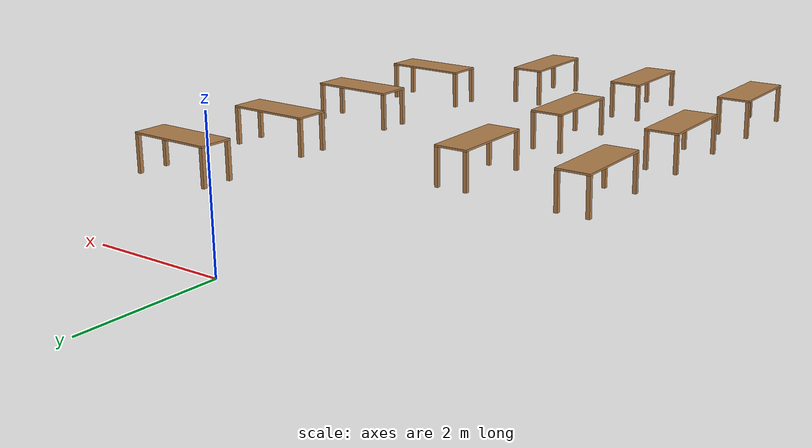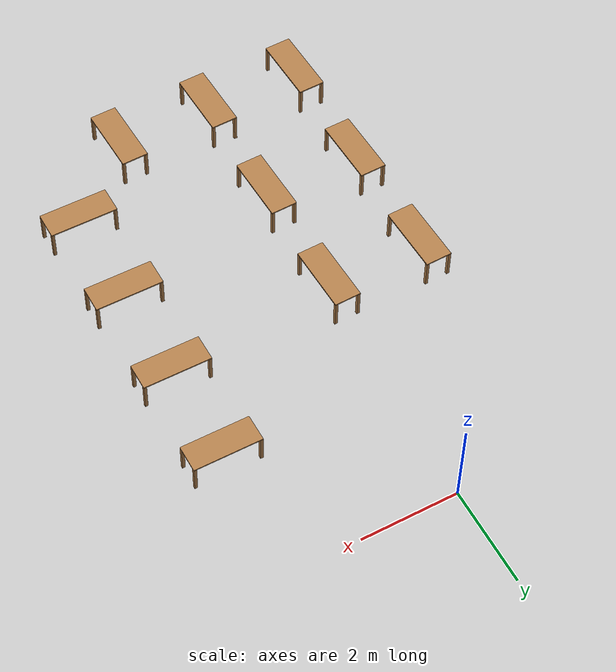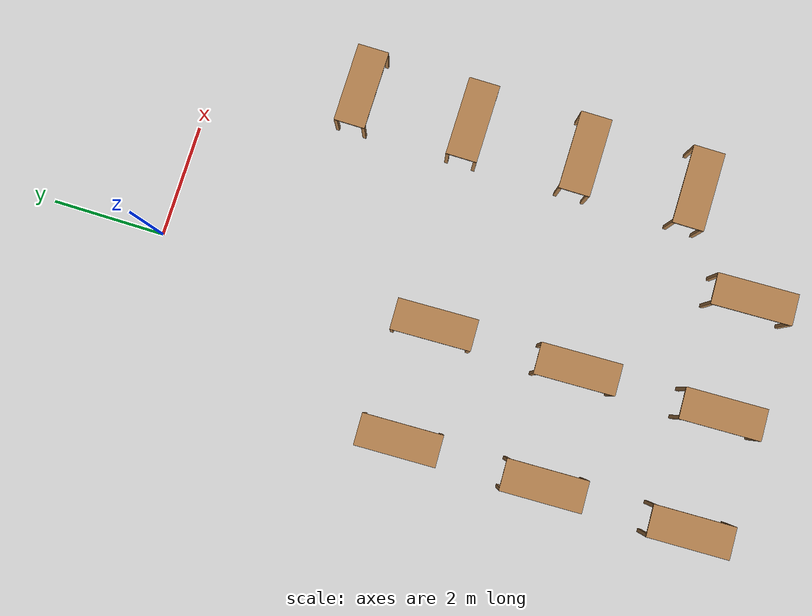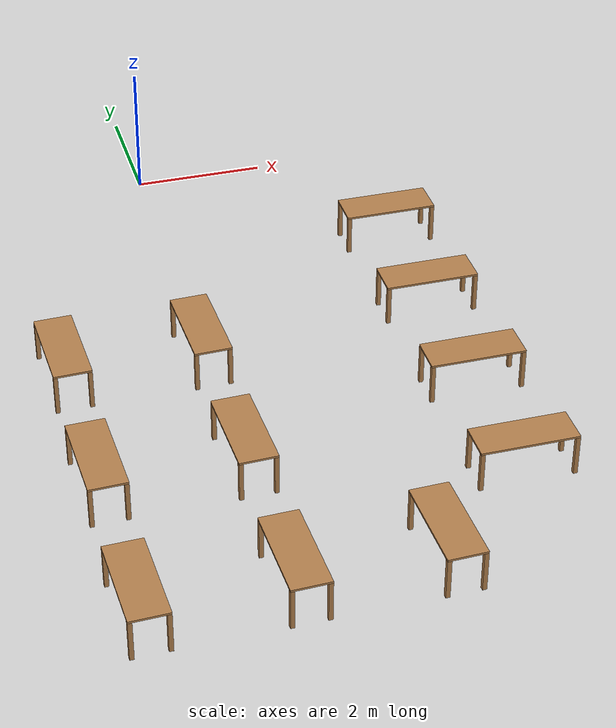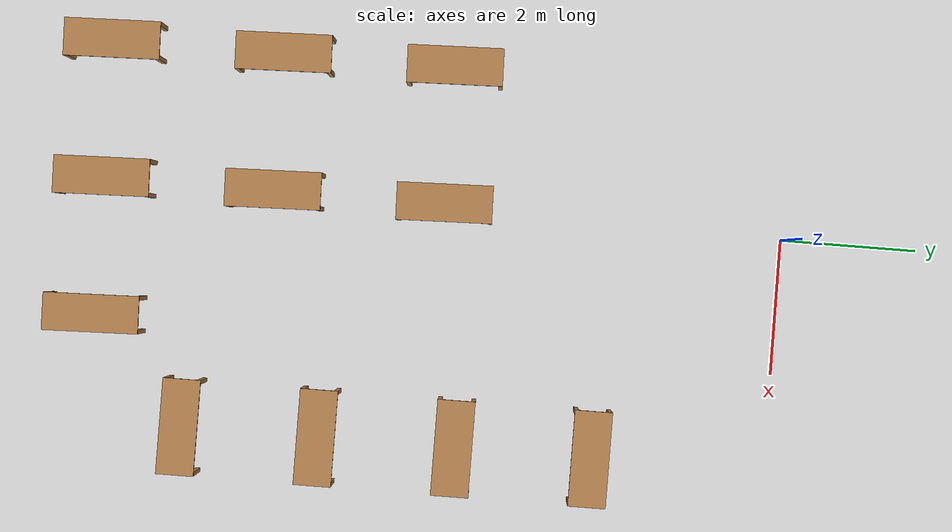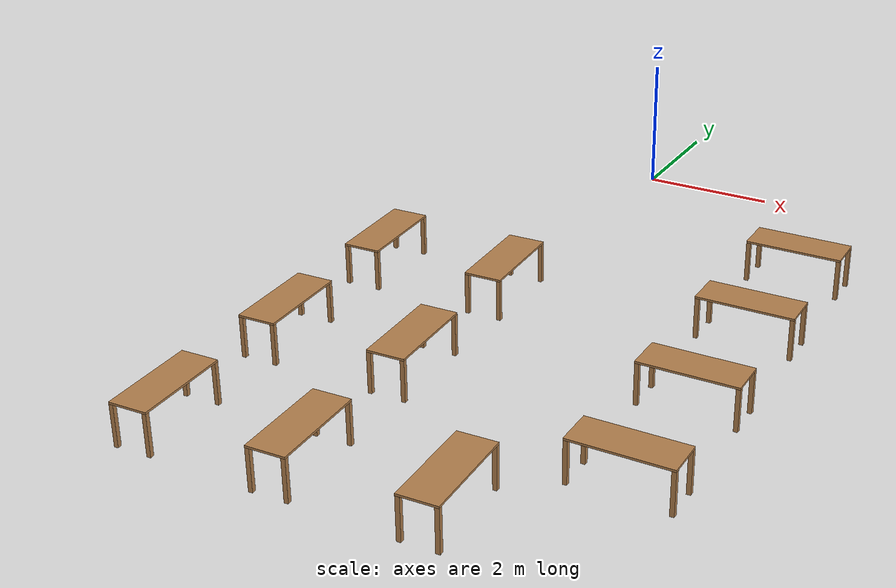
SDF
<sdf version="1.5">
 <world name="default">
  <scene><grid>false</grid><sky><clouds><speed>12</speed></clouds></sky></scene>
  <include><uri>model://sun</uri><name>sun_1</name><pose>0 0 1 0 0 0</pose></include>
  <model name="Table1">
   <static>true</static>
   <link name="mesa_link">
    <visual name="mesa_link_visual">
     <pose>0 0 0.615 0 -0 0</pose>
     <geometry><box><size>1.4 0.55 0.03</size></box></geometry>
     <material><script><name>Gazebo/Wood</name><uri>__default__</uri></script></material>
    </visual>
    <visual name="mesa_link_visual_pata_1_link">
     <pose>0.67 0.245 0.3 0 -0 0</pose>
     <geometry><box><size>0.06 0.06 0.6</size></box></geometry>
     <material><script><name>Gazebo/Wood</name><uri>__default__</uri></script></material>
    </visual>
    <visual name="mesa_link_visual_pata_2_link">
     <pose>0.67 -0.245 0.3 0 -0 0</pose>
     <geometry><box><size>0.06 0.06 0.6</size></box></geometry>
     <material><script><name>Gazebo/Wood</name><uri>__default__</uri></script></material>
    </visual>
    <visual name="mesa_link_visual_pata_3_link">
     <pose>-0.67 -0.245 0.3 0 -0 0</pose>
     <geometry><box><size>0.06 0.06 0.6</size></box></geometry>
     <material><script><name>Gazebo/Wood</name><uri>__default__</uri></script></material>
    </visual>
    <visual name="mesa_link_visual_pata_4_link">
     <pose>-0.67 0.245 0.3 0 -0 0</pose>
     <geometry><box><size>0.06 0.06 0.6</size></box></geometry>
     <material><script><name>Gazebo/Wood</name><uri>__default__</uri></script></material>
    </visual>
   </link>
   <pose>-2.15 -10 0 0 -0 1.60052</pose>
   <static>0</static>
  </model>
  <model name="Table2">
   <static>true</static>
   <link name="mesa_link">
    <visual name="mesa_link_visual">
     <pose>0 0 0.615 0 -0 0</pose>
     <geometry><box><size>1.4 0.55 0.03</size></box></geometry>
     <material><script><name>Gazebo/Wood</name><uri>__default__</uri></script></material>
    </visual>
    <visual name="mesa_link_visual_pata_1_link">
     <pose>0.67 0.245 0.3 0 -0 0</pose>
     <geometry><box><size>0.06 0.06 0.6</size></box></geometry>
     <material><script><name>Gazebo/Wood</name><uri>__default__</uri></script></material>
    </visual>
    <visual name="mesa_link_visual_pata_2_link">
     <pose>0.67 -0.245 0.3 0 -0 0</pose>
     <geometry><box><size>0.06 0.06 0.6</size></box></geometry>
     <material><script><name>Gazebo/Wood</name><uri>__default__</uri></script></material>
    </visual>
    <visual name="mesa_link_visual_pata_3_link">
     <pose>-0.67 -0.245 0.3 0 -0 0</pose>
     <geometry><box><size>0.06 0.06 0.6</size></box></geometry>
     <material><script><name>Gazebo/Wood</name><uri>__default__</uri></script></material>
    </visual>
    <visual name="mesa_link_visual_pata_4_link">
     <pose>-0.67 0.245 0.3 0 -0 0</pose>
     <geometry><box><size>0.06 0.06 0.6</size></box></geometry>
     <material><script><name>Gazebo/Wood</name><uri>__default__</uri></script></material>
    </visual>
   </link>
   <pose>-0.15 -10 0 0 -0 1.60052</pose>
   <static>0</static>
  </model>
  <model name="Table3">
   <static>true</static>
   <link name="mesa_link">
    <visual name="mesa_link_visual">
     <pose>0 0 0.615 0 -0 0</pose>
     <geometry><box><size>1.4 0.55 0.03</size></box></geometry>
     <material><script><name>Gazebo/Wood</name><uri>__default__</uri></script></material>
    </visual>
    <visual name="mesa_link_visual_pata_1_link">
     <pose>0.67 0.245 0.3 0 -0 0</pose>
     <geometry><box><size>0.06 0.06 0.6</size></box></geometry>
     <material><script><name>Gazebo/Wood</name><uri>__default__</uri></script></material>
    </visual>
    <visual name="mesa_link_visual_pata_2_link">
     <pose>0.67 -0.245 0.3 0 -0 0</pose>
     <geometry><box><size>0.06 0.06 0.6</size></box></geometry>
     <material><script><name>Gazebo/Wood</name><uri>__default__</uri></script></material>
    </visual>
    <visual name="mesa_link_visual_pata_3_link">
     <pose>-0.67 -0.245 0.3 0 -0 0</pose>
     <geometry><box><size>0.06 0.06 0.6</size></box></geometry>
     <material><script><name>Gazebo/Wood</name><uri>__default__</uri></script></material>
    </visual>
    <visual name="mesa_link_visual_pata_4_link">
     <pose>-0.67 0.245 0.3 0 -0 0</pose>
     <geometry><box><size>0.06 0.06 0.6</size></box></geometry>
     <material><script><name>Gazebo/Wood</name><uri>__default__</uri></script></material>
    </visual>
   </link>
   <pose>1.85 -10 0 0 -0 1.60052</pose>
   <static>0</static>
  </model>
  <model name="Table4">
   <static>true</static>
   <link name="mesa_link">
    <visual name="mesa_link_visual">
     <pose>0 0 0.615 0 -0 0</pose>
     <geometry><box><size>1.4 0.55 0.03</size></box></geometry>
     <material><script><name>Gazebo/Wood</name><uri>__default__</uri></script></material>
    </visual>
    <visual name="mesa_link_visual_pata_1_link">
     <pose>0.67 0.245 0.3 0 -0 0</pose>
     <geometry><box><size>0.06 0.06 0.6</size></box></geometry>
     <material><script><name>Gazebo/Wood</name><uri>__default__</uri></script></material>
    </visual>
    <visual name="mesa_link_visual_pata_2_link">
     <pose>0.67 -0.245 0.3 0 -0 0</pose>
     <geometry><box><size>0.06 0.06 0.6</size></box></geometry>
     <material><script><name>Gazebo/Wood</name><uri>__default__</uri></script></material>
    </visual>
    <visual name="mesa_link_visual_pata_3_link">
     <pose>-0.67 -0.245 0.3 0 -0 0</pose>
     <geometry><box><size>0.06 0.06 0.6</size></box></geometry>
     <material><script><name>Gazebo/Wood</name><uri>__default__</uri></script></material>
    </visual>
    <visual name="mesa_link_visual_pata_4_link">
     <pose>-0.67 0.245 0.3 0 -0 0</pose>
     <geometry><box><size>0.06 0.06 0.6</size></box></geometry>
     <material><script><name>Gazebo/Wood</name><uri>__default__</uri></script></material>
    </visual>
   </link>
   <pose>3.4 -8.6 0 0 -0 0</pose>
   <static>0</static>
  </model>
  <model name="Table5">
   <static>true</static>
   <link name="mesa_link">
    <visual name="mesa_link_visual">
     <pose>0 0 0.615 0 -0 0</pose>
     <geometry><box><size>1.4 0.55 0.03</size></box></geometry>
     <material><script><name>Gazebo/Wood</name><uri>__default__</uri></script></material>
    </visual>
    <visual name="mesa_link_visual_pata_1_link">
     <pose>0.67 0.245 0.3 0 -0 0</pose>
     <geometry><box><size>0.06 0.06 0.6</size></box></geometry>
     <material><script><name>Gazebo/Wood</name><uri>__default__</uri></script></material>
    </visual>
    <visual name="mesa_link_visual_pata_2_link">
     <pose>0.67 -0.245 0.3 0 -0 0</pose>
     <geometry><box><size>0.06 0.06 0.6</size></box></geometry>
     <material><script><name>Gazebo/Wood</name><uri>__default__</uri></script></material>
    </visual>
    <visual name="mesa_link_visual_pata_3_link">
     <pose>-0.67 -0.245 0.3 0 -0 0</pose>
     <geometry><box><size>0.06 0.06 0.6</size></box></geometry>
     <material><script><name>Gazebo/Wood</name><uri>__default__</uri></script></material>
    </visual>
    <visual name="mesa_link_visual_pata_4_link">
     <pose>-0.67 0.245 0.3 0 -0 0</pose>
     <geometry><box><size>0.06 0.06 0.6</size></box></geometry>
     <material><script><name>Gazebo/Wood</name><uri>__default__</uri></script></material>
    </visual>
   </link>
   <pose>3.4 -6.6 0 0 -0 0</pose>
   <static>0</static>
  </model>
  <model name="Table6">
   <static>true</static>
   <link name="mesa_link">
    <visual name="mesa_link_visual">
     <pose>0 0 0.615 0 -0 0</pose>
     <geometry><box><size>1.4 0.55 0.03</size></box></geometry>
     <material><script><name>Gazebo/Wood</name><uri>__default__</uri></script></material>
    </visual>
    <visual name="mesa_link_visual_pata_1_link">
     <pose>0.67 0.245 0.3 0 -0 0</pose>
     <geometry><box><size>0.06 0.06 0.6</size></box></geometry>
     <material><script><name>Gazebo/Wood</name><uri>__default__</uri></script></material>
    </visual>
    <visual name="mesa_link_visual_pata_2_link">
     <pose>0.67 -0.245 0.3 0 -0 0</pose>
     <geometry><box><size>0.06 0.06 0.6</size></box></geometry>
     <material><script><name>Gazebo/Wood</name><uri>__default__</uri></script></material>
    </visual>
    <visual name="mesa_link_visual_pata_3_link">
     <pose>-0.67 -0.245 0.3 0 -0 0</pose>
     <geometry><box><size>0.06 0.06 0.6</size></box></geometry>
     <material><script><name>Gazebo/Wood</name><uri>__default__</uri></script></material>
    </visual>
    <visual name="mesa_link_visual_pata_4_link">
     <pose>-0.67 0.245 0.3 0 -0 0</pose>
     <geometry><box><size>0.06 0.06 0.6</size></box></geometry>
     <material><script><name>Gazebo/Wood</name><uri>__default__</uri></script></material>
    </visual>
   </link>
   <pose>-2.15 -7.5 0 0 -0 1.60052</pose>
   <static>0</static>
  </model>
  <model name="Table7">
   <static>true</static>
   <link name="mesa_link">
    <visual name="mesa_link_visual">
     <pose>0 0 0.615 0 -0 0</pose>
     <geometry><box><size>1.4 0.55 0.03</size></box></geometry>
     <material><script><name>Gazebo/Wood</name><uri>__default__</uri></script></material>
    </visual>
    <visual name="mesa_link_visual_pata_1_link">
     <pose>0.67 0.245 0.3 0 -0 0</pose>
     <geometry><box><size>0.06 0.06 0.6</size></box></geometry>
     <material><script><name>Gazebo/Wood</name><uri>__default__</uri></script></material>
    </visual>
    <visual name="mesa_link_visual_pata_2_link">
     <pose>0.67 -0.245 0.3 0 -0 0</pose>
     <geometry><box><size>0.06 0.06 0.6</size></box></geometry>
     <material><script><name>Gazebo/Wood</name><uri>__default__</uri></script></material>
    </visual>
    <visual name="mesa_link_visual_pata_3_link">
     <pose>-0.67 -0.245 0.3 0 -0 0</pose>
     <geometry><box><size>0.06 0.06 0.6</size></box></geometry>
     <material><script><name>Gazebo/Wood</name><uri>__default__</uri></script></material>
    </visual>
    <visual name="mesa_link_visual_pata_4_link">
     <pose>-0.67 0.245 0.3 0 -0 0</pose>
     <geometry><box><size>0.06 0.06 0.6</size></box></geometry>
     <material><script><name>Gazebo/Wood</name><uri>__default__</uri></script></material>
    </visual>
   </link>
   <pose>-0.15 -7.5 0 0 -0 1.60052</pose>
   <static>0</static>
  </model>
  <model name="Table8">
   <static>true</static>
   <link name="mesa_link">
    <visual name="mesa_link_visual">
     <pose>0 0 0.615 0 -0 0</pose>
     <geometry><box><size>1.4 0.55 0.03</size></box></geometry>
     <material><script><name>Gazebo/Wood</name><uri>__default__</uri></script></material>
    </visual>
    <visual name="mesa_link_visual_pata_1_link">
     <pose>0.67 0.245 0.3 0 -0 0</pose>
     <geometry><box><size>0.06 0.06 0.6</size></box></geometry>
     <material><script><name>Gazebo/Wood</name><uri>__default__</uri></script></material>
    </visual>
    <visual name="mesa_link_visual_pata_2_link">
     <pose>0.67 -0.245 0.3 0 -0 0</pose>
     <geometry><box><size>0.06 0.06 0.6</size></box></geometry>
     <material><script><name>Gazebo/Wood</name><uri>__default__</uri></script></material>
    </visual>
    <visual name="mesa_link_visual_pata_3_link">
     <pose>-0.67 -0.245 0.3 0 -0 0</pose>
     <geometry><box><size>0.06 0.06 0.6</size></box></geometry>
     <material><script><name>Gazebo/Wood</name><uri>__default__</uri></script></material>
    </visual>
    <visual name="mesa_link_visual_pata_4_link">
     <pose>-0.67 0.245 0.3 0 -0 0</pose>
     <geometry><box><size>0.06 0.06 0.6</size></box></geometry>
     <material><script><name>Gazebo/Wood</name><uri>__default__</uri></script></material>
    </visual>
   </link>
   <pose>-2.15 -5 0 0 -0 1.60052</pose>
   <static>0</static>
  </model>
  <model name="Table9">
   <static>true</static>
   <link name="mesa_link">
    <visual name="mesa_link_visual">
     <pose>0 0 0.615 0 -0 0</pose>
     <geometry><box><size>1.4 0.55 0.03</size></box></geometry>
     <material><script><name>Gazebo/Wood</name><uri>__default__</uri></script></material>
    </visual>
    <visual name="mesa_link_visual_pata_1_link">
     <pose>0.67 0.245 0.3 0 -0 0</pose>
     <geometry><box><size>0.06 0.06 0.6</size></box></geometry>
     <material><script><name>Gazebo/Wood</name><uri>__default__</uri></script></material>
    </visual>
    <visual name="mesa_link_visual_pata_2_link">
     <pose>0.67 -0.245 0.3 0 -0 0</pose>
     <geometry><box><size>0.06 0.06 0.6</size></box></geometry>
     <material><script><name>Gazebo/Wood</name><uri>__default__</uri></script></material>
    </visual>
    <visual name="mesa_link_visual_pata_3_link">
     <pose>-0.67 -0.245 0.3 0 -0 0</pose>
     <geometry><box><size>0.06 0.06 0.6</size></box></geometry>
     <material><script><name>Gazebo/Wood</name><uri>__default__</uri></script></material>
    </visual>
    <visual name="mesa_link_visual_pata_4_link">
     <pose>-0.67 0.245 0.3 0 -0 0</pose>
     <geometry><box><size>0.06 0.06 0.6</size></box></geometry>
     <material><script><name>Gazebo/Wood</name><uri>__default__</uri></script></material>
    </visual>
   </link>
   <pose>-0.15 -5 0 0 -0 1.60052</pose>
   <static>0</static>
  </model>
  <model name="Table10">
   <static>true</static>
   <link name="mesa_link">
    <visual name="mesa_link_visual">
     <pose>0 0 0.615 0 -0 0</pose>
     <geometry><box><size>1.4 0.55 0.03</size></box></geometry>
     <material><script><name>Gazebo/Wood</name><uri>__default__</uri></script></material>
    </visual>
    <visual name="mesa_link_visual_pata_1_link">
     <pose>0.67 0.245 0.3 0 -0 0</pose>
     <geometry><box><size>0.06 0.06 0.6</size></box></geometry>
     <material><script><name>Gazebo/Wood</name><uri>__default__</uri></script></material>
    </visual>
    <visual name="mesa_link_visual_pata_2_link">
     <pose>0.67 -0.245 0.3 0 -0 0</pose>
     <geometry><box><size>0.06 0.06 0.6</size></box></geometry>
     <material><script><name>Gazebo/Wood</name><uri>__default__</uri></script></material>
    </visual>
    <visual name="mesa_link_visual_pata_3_link">
     <pose>-0.67 -0.245 0.3 0 -0 0</pose>
     <geometry><box><size>0.06 0.06 0.6</size></box></geometry>
     <material><script><name>Gazebo/Wood</name><uri>__default__</uri></script></material>
    </visual>
    <visual name="mesa_link_visual_pata_4_link">
     <pose>-0.67 0.245 0.3 0 -0 0</pose>
     <geometry><box><size>0.06 0.06 0.6</size></box></geometry>
     <material><script><name>Gazebo/Wood</name><uri>__default__</uri></script></material>
    </visual>
   </link>
   <pose>3.4 -4.6 0 0 -0 0</pose>
   <static>0</static>
  </model>
  <model name="Table11">
   <static>true</static>
   <link name="mesa_link">
    <visual name="mesa_link_visual">
     <pose>0 0 0.615 0 -0 0</pose>
     <geometry><box><size>1.4 0.55 0.03</size></box></geometry>
     <material><script><name>Gazebo/Wood</name><uri>__default__</uri></script></material>
    </visual>
    <visual name="mesa_link_visual_pata_1_link">
     <pose>0.67 0.245 0.3 0 -0 0</pose>
     <geometry><box><size>0.06 0.06 0.6</size></box></geometry>
     <material><script><name>Gazebo/Wood</name><uri>__default__</uri></script></material>
    </visual>
    <visual name="mesa_link_visual_pata_2_link">
     <pose>0.67 -0.245 0.3 0 -0 0</pose>
     <geometry><box><size>0.06 0.06 0.6</size></box></geometry>
     <material><script><name>Gazebo/Wood</name><uri>__default__</uri></script></material>
    </visual>
    <visual name="mesa_link_visual_pata_3_link">
     <pose>-0.67 -0.245 0.3 0 -0 0</pose>
     <geometry><box><size>0.06 0.06 0.6</size></box></geometry>
     <material><script><name>Gazebo/Wood</name><uri>__default__</uri></script></material>
    </visual>
    <visual name="mesa_link_visual_pata_4_link">
     <pose>-0.67 0.245 0.3 0 -0 0</pose>
     <geometry><box><size>0.06 0.06 0.6</size></box></geometry>
     <material><script><name>Gazebo/Wood</name><uri>__default__</uri></script></material>
    </visual>
   </link>
   <pose>3.4 -2.6 0 0 -0 0</pose>
   <static>0</static>
  </model>
 </world>
</sdf>
